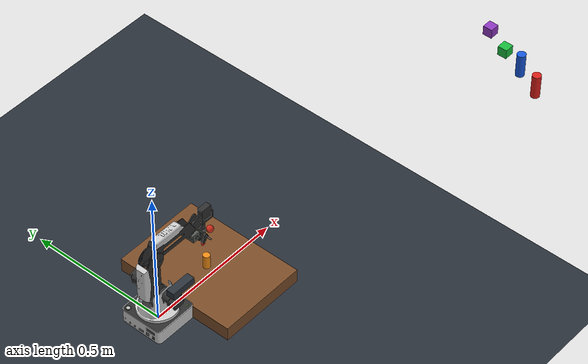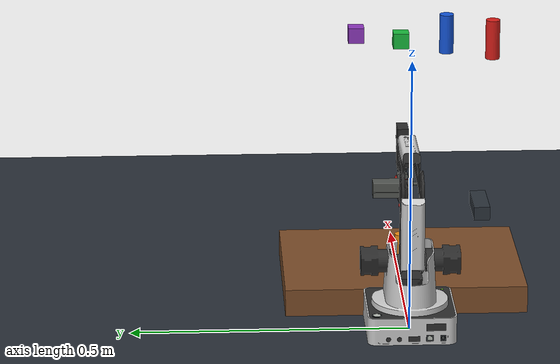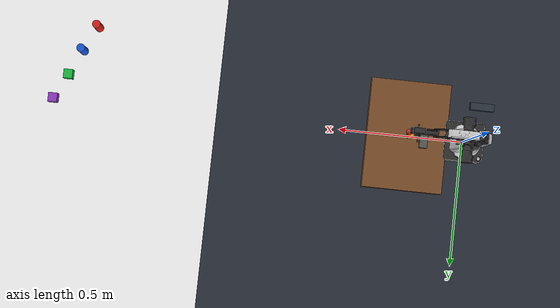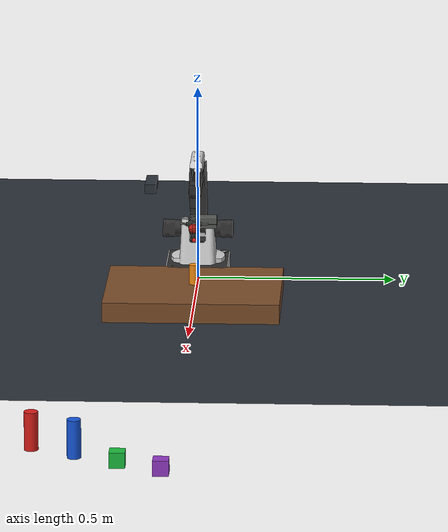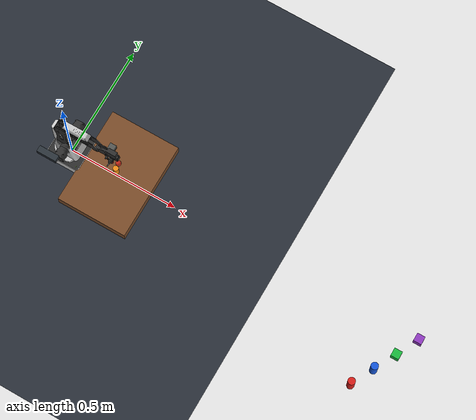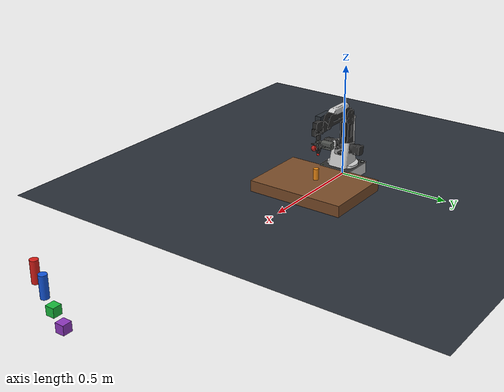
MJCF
<mujoco model="dobot_magician_validation">
  <compiler angle="radian" autolimits="true"/>
  <option timestep="0.001" integrator="implicitfast" gravity="0 0 -9.81"
          solver="Newton" iterations="100" tolerance="1e-10">
    <flag contact="enable"/>
  </option>

  <visual>
    <headlight ambient="0.35 0.35 0.35" diffuse="0.75 0.75 0.75" specular="0.25 0.25 0.25"/>
    <rgba haze="0.15 0.18 0.22 1"/>
    <global azimuth="135" elevation="-22" offwidth="1024" offheight="768"/>
  </visual>

  <statistic center="0 0 0.18" extent="0.55"/>

  <default>
    <joint limited="true" damping="0.08" armature="0.002" frictionloss="0.01"/>
    <geom friction="0.8 0.02 0.002" solref="0.008 1" solimp="0.9 0.95 0.001"
          contype="1" conaffinity="2"/>
    <position ctrllimited="true" kp="250" kv="14"/>
    <default class="collision">
      <geom group="3" rgba="0 0 0 0"/>
    </default>
    <default class="cad_visual">
      <geom contype="0" conaffinity="0" group="2" mass="0.000001"/>
    </default>
  </default>

  <asset>
    <texture name="floor_tex" type="2d" builtin="checker" rgb1="0.20 0.23 0.27"
             rgb2="0.12 0.14 0.17" width="512" height="512"/>
    <material name="floor_mat" texture="floor_tex" texrepeat="3 3" texuniform="true"
              reflectance="0.12"/>
    <material name="base_mat" rgba="0.12 0.16 0.20 1"/>
    <material name="arm_mat" rgba="0.92 0.94 0.96 1"/>
    <material name="joint_mat" rgba="0.08 0.58 0.86 1"/>
    <material name="gripper_mat" rgba="0.18 0.21 0.25 1"/>
    <material name="table_mat" rgba="0.48 0.30 0.16 1"/>
    <material name="object_mat" rgba="0.95 0.55 0.08 1"/>
    <material name="can_red_mat" rgba="0.85 0.12 0.10 1"/>
    <material name="can_blue_mat" rgba="0.08 0.34 0.86 1"/>
    <material name="block_green_mat" rgba="0.10 0.73 0.24 1"/>
    <material name="block_purple_mat" rgba="0.56 0.22 0.75 1"/>
    <material name="cad_dark" rgba="0.180392 0.180392 0.180392 1"/>
    <material name="cad_blueblack" rgba="0.180392 0.2 0.211765 1"/>
    <material name="cad_green" rgba="0.541176 0.878431 0.2 1"/>
    <material name="cad_silver" rgba="0.721569 0.741176 0.709804 1"/>
    <material name="cad_light" rgba="0.8 0.8 0.8 1"/>
    <material name="cad_mid" rgba="0.341176 0.34902 0.337255 1"/>
    <material name="cad_gripper" rgba="0.329412 0.341176 0.32549 1"/>

    <mesh name="mesh_base_dark" file="meshes/magicianBase_46_46_46.obj"/>
    <mesh name="mesh_base_blueblack" file="meshes/magicianBase_46_51_54.obj"/>
    <mesh name="mesh_base_green" file="meshes/magicianBase_138_224_51.obj"/>
    <mesh name="mesh_base_silver" file="meshes/magicianBase_184_189_181.obj"/>
    <mesh name="mesh_base_light" file="meshes/magicianBase_204_204_204.obj"/>
    <mesh name="mesh_link1_dark" file="meshes/magicianLink1_46_46_46.obj"/>
    <mesh name="mesh_link1_light" file="meshes/magicianLink1_204_204_204.obj"/>
    <mesh name="mesh_link2_dark" file="meshes/magicianLink2_46_46_46.obj"/>
    <mesh name="mesh_link2_mid" file="meshes/magicianLink2_87_89_86.obj"/>
    <mesh name="mesh_link2_light" file="meshes/magicianLink2_204_204_204.obj"/>
    <mesh name="mesh_link3_dark" file="meshes/magicianLink3_46_46_46.obj"/>
    <mesh name="mesh_link3_mid" file="meshes/magicianLink3_87_89_86.obj"/>
    <mesh name="mesh_link3_light" file="meshes/magicianLink3_204_204_204.obj"/>
    <mesh name="mesh_link4_dark" file="meshes/magicianLink4_46_46_46.obj"/>
    <mesh name="mesh_gripper_core_dark" file="meshes/gripper_core_46_46_46.obj"/>
    <mesh name="mesh_gripper_core_mid" file="meshes/gripper_core_84_87_83.obj"/>
    <mesh name="mesh_jaw_left_dark" file="meshes/jaw_left_46_46_46.obj"/>
    <mesh name="mesh_jaw_left_mid" file="meshes/jaw_left_84_87_83.obj"/>
    <mesh name="mesh_jaw_right_dark" file="meshes/jaw_right_46_46_46.obj"/>
  </asset>

  <worldbody>
    <light name="key" pos="0.2 -0.35 0.8" dir="-0.2 0.3 -1" directional="true"/>
    <light name="fill" pos="-0.4 0.2 0.55" dir="0.5 -0.2 -0.7" directional="true" diffuse="0.35 0.4 0.5"/>
    <geom name="floor" type="plane" size="1 1 0.05" material="floor_mat"
          contype="2" conaffinity="1"/>
    <camera name="overview" mode="targetbody" target="shoulder" pos="0.52 -0.52 0.42"/>
    <!-- Fixed eye-to-hand RGB-D camera looking at the tabletop workspace.
         The side-offset view reduces arm/gripper occlusion during a grasp. -->
    <camera name="d435i_sim" pos="0.55 0 0.50"
            xyaxes="0 1 0
                    -0.817482433 0 0.575953532"
            fovy="43.2"/>

    <!-- A compact tabletop and a free object for deterministic pick tests. -->
    <geom name="pick_table" type="box" pos="0.23 0 0.025" size="0.16 0.22 0.025"
          material="table_mat" contype="2" conaffinity="1" friction="1.0 0.02 0.002"/>
    <body name="pick_object" pos="0.22 0 0.076">
      <freejoint name="pick_object_free"/>
      <geom name="pick_object_geom" type="cylinder" size="0.012 0.025"
            material="object_mat" mass="0.035" friction="1.2 0.03 0.003"
            contype="3" conaffinity="3"/>
      <site name="pick_object_site" type="sphere" size="0.004" rgba="1 1 0.1 1"/>
    </body>

    <!-- Clutter bodies start parked outside the workspace. The clutter-mode
         backend moves them onto the table using collision-free seeded poses. -->
    <body name="can_red" pos="1.50 -0.30 0.096">
      <freejoint name="can_red_free"/>
      <geom name="can_red_geom" type="cylinder" size="0.016 0.045"
            material="can_red_mat" mass="0.035" friction="0.9 0.03 0.003"
            contype="3" conaffinity="3"/>
    </body>
    <body name="can_blue" pos="1.55 -0.20 0.096">
      <freejoint name="can_blue_free"/>
      <geom name="can_blue_geom" type="cylinder" size="0.016 0.045"
            material="can_blue_mat" mass="0.035" friction="0.9 0.03 0.003"
            contype="3" conaffinity="3"/>
    </body>
    <body name="block_green" pos="1.60 -0.10 0.068">
      <freejoint name="block_green_free"/>
      <geom name="block_green_geom" type="box" size="0.018 0.018 0.018"
            material="block_green_mat" mass="0.025" friction="1.0 0.03 0.003"
            contype="3" conaffinity="3"/>
    </body>
    <body name="block_purple" pos="1.65 0.00 0.068">
      <freejoint name="block_purple_free"/>
      <geom name="block_purple_geom" type="box" size="0.018 0.018 0.018"
            material="block_purple_mat" mass="0.025" friction="1.0 0.03 0.003"
            contype="3" conaffinity="3"/>
    </body>

    <body name="target_marker" mocap="true" pos="0.24 0 0.20">
      <geom name="target_geom" type="sphere" size="0.012" rgba="0.95 0.16 0.12 0.75"
            contype="0" conaffinity="0" mass="0.001"/>
    </body>

    <body name="base" pos="0 0 0">
      <geom name="base_foot" class="collision" type="cylinder" pos="0 0 0.040" size="0.072 0.040"
            material="base_mat" mass="1.20"/>
      <geom name="base_neck" class="collision" type="cylinder" pos="0 0 0.105" size="0.045 0.030"
            material="joint_mat" mass="0.30"/>
      <geom name="visual_base_dark" class="cad_visual" type="mesh" mesh="mesh_base_dark"
            pos="0 0 0.131305" material="cad_dark"/>
      <geom name="visual_base_blueblack" class="cad_visual" type="mesh" mesh="mesh_base_blueblack"
            pos="0 0 0.131305" material="cad_blueblack"/>
      <geom name="visual_base_green" class="cad_visual" type="mesh" mesh="mesh_base_green"
            pos="0 0 0.131305" material="cad_green"/>
      <geom name="visual_base_silver" class="cad_visual" type="mesh" mesh="mesh_base_silver"
            pos="0 0 0.131305" material="cad_silver"/>
      <geom name="visual_base_light" class="cad_visual" type="mesh" mesh="mesh_base_light"
            pos="0 0 0.131305" material="cad_light"/>

      <!-- Base-mounted D435i stand-in, aimed at the tabletop center. Its
           extrinsic is fixed in the robot base frame, not the world frame. -->
      <body name="d435i_mount" pos="0.02 -0.10 0.28">
        <geom name="d435i_mount_visual" type="box" pos="-0.04 -0.02 -0.04"
              size="0.045 0.014 0.012"
              rgba="0.17 0.20 0.23 1" contype="0" conaffinity="0" mass="0.01"/>
        <camera name="d435i_base" pos="0 -0.01 0.02"
                xyaxes="0.464006995 -0.885831535 0
                        0.642785078 0.336696946 0.688086121"
                fovy="43.2"/>
      </body>

      <!-- The shoulder origin matches magician_joint_base: z = 0.131305 m. -->
      <body name="shoulder" pos="0 0 0.131305">
        <joint name="joint_1" type="hinge" axis="0 0 1" range="-2.181661565 2.181661565"/>
        <geom name="shoulder_housing" class="collision" type="cylinder" size="0.039 0.034"
              material="joint_mat" mass="0.36"/>
        <geom name="visual_link1_dark" class="cad_visual" type="mesh" mesh="mesh_link1_dark"
              material="cad_dark"/>
        <geom name="visual_link1_light" class="cad_visual" type="mesh" mesh="mesh_link1_light"
              material="cad_light"/>
        <site name="base_pivot_site" type="sphere" size="0.004" rgba="1 0.8 0.1 1"/>

        <body name="rear_arm" pos="0 0 0">
          <joint name="joint_2" type="hinge" axis="0 1 0" range="-0.087266463 1.570796327"/>
          <geom name="rear_arm_link" class="collision" type="capsule" fromto="0 0 0 0 0 0.135" size="0.020"
                material="arm_mat" mass="0.24"/>
          <geom name="visual_link2_dark" class="cad_visual" type="mesh" mesh="mesh_link2_dark"
                euler="0 -0.349065850399 0" material="cad_dark"/>
          <geom name="visual_link2_mid" class="cad_visual" type="mesh" mesh="mesh_link2_mid"
                euler="0 -0.349065850399 0" material="cad_mid"/>
          <geom name="visual_link2_light" class="cad_visual" type="mesh" mesh="mesh_link2_light"
                euler="0 -0.349065850399 0" material="cad_light"/>

          <body name="elbow" pos="0 0 0.135">
            <!-- This is theta3 - theta2, not the raw firmware theta3. -->
            <joint name="joint_3_relative" type="hinge" axis="0 1 0"
                   range="-1.832595715 1.308996939"/>
            <geom name="elbow_housing" class="collision" type="sphere" size="0.027" material="joint_mat" mass="0.09"/>
            <geom name="forearm_link" class="collision" type="capsule" fromto="0 0 0 0.147 0 0" size="0.018"
                  material="arm_mat" mass="0.20"/>
            <geom name="visual_link3_dark" class="cad_visual" type="mesh" mesh="mesh_link3_dark"
                  pos="0.01645236136 0 -0.133993730472" euler="0 -0.471238898038 0"
                  material="cad_dark"/>
            <geom name="visual_link3_mid" class="cad_visual" type="mesh" mesh="mesh_link3_mid"
                  pos="0.01645236136 0 -0.133993730472" euler="0 -0.471238898038 0"
                  material="cad_mid"/>
            <geom name="visual_link3_light" class="cad_visual" type="mesh" mesh="mesh_link3_light"
                  pos="0.01645236136 0 -0.133993730472" euler="0 -0.471238898038 0"
                  material="cad_light"/>
            <site name="wrist_site" pos="0.147 0 0" type="sphere" size="0.005"
                  rgba="0.1 0.95 0.3 1"/>

            <body name="wrist_pitch_comp_1" pos="0.147 0 0">
              <joint name="joint_mimic_1" type="hinge" axis="0 1 0"
                     range="-1.570796327 0.087266463"/>
              <geom name="mimic_1_inertia" type="sphere" size="0.003" mass="0.001"
                    rgba="0 0 0 0" contype="0" conaffinity="0"/>
              <body name="wrist_pitch_comp_2">
                <joint name="joint_mimic_2" type="hinge" axis="0 1 0"
                       range="-1.308996939 1.832595715"/>
                <geom name="wrist_link" class="collision" type="capsule" fromto="0 0 0 0.060 0 0" size="0.016"
                      material="arm_mat" mass="0.08"/>
                <geom name="visual_link4_dark" class="cad_visual" type="mesh" mesh="mesh_link4_dark"
                      pos="-0.177150678405 0 -0.058595107268" material="cad_dark"/>

                <body name="flange" pos="0.060 0 0">
                  <joint name="joint_4" type="hinge" axis="0 0 1"
                         range="-2.617993878 2.617993878"/>
                  <geom name="flange_housing" class="collision" type="cylinder" pos="0 0 -0.014" size="0.030 0.018"
                        material="joint_mat" mass="0.10"/>
                  <site name="flange_site" type="sphere" size="0.004" rgba="0.9 0.6 0.1 1"/>
                  <geom name="gripper_core" class="collision" type="box" pos="0 0 -0.038" size="0.027 0.021 0.022"
                        material="gripper_mat" mass="0.12"/>
                  <geom name="visual_gripper_core_dark" class="cad_visual" type="mesh"
                        mesh="mesh_gripper_core_dark" pos="-0.000080678405 0 -0.027843407268"
                        material="cad_dark"/>
                  <geom name="visual_gripper_core_mid" class="cad_visual" type="mesh"
                        mesh="mesh_gripper_core_mid" pos="-0.000080678405 0 -0.027843407268"
                        material="cad_gripper"/>
                  <site name="tcp_site" pos="0 0 -0.104843272462" type="sphere" size="0.006"
                        rgba="0.95 0.15 0.12 1"/>

                  <body name="left_jaw">
                    <joint name="gripper_left" type="slide" axis="0 1 0" range="0 0.0135"/>
                    <geom name="left_jaw_geom" class="collision" type="box"
                          pos="0 0.0135 -0.077" size="0.010 0.007 0.027"
                          material="arm_mat" mass="0.025"/>
                    <geom name="visual_jaw_left_dark" class="cad_visual" type="mesh"
                          mesh="mesh_jaw_left_dark" pos="-0.000080678405 -0.0009 -0.027843407268"
                          material="cad_dark"/>
                    <geom name="visual_jaw_left_mid" class="cad_visual" type="mesh"
                          mesh="mesh_jaw_left_mid" pos="-0.000080678405 -0.0009 -0.027843407268"
                          material="cad_gripper"/>
                  </body>
                  <body name="right_jaw">
                    <joint name="gripper_right" type="slide" axis="0 1 0" range="-0.0135 0"/>
                    <geom name="right_jaw_geom" class="collision" type="box"
                          pos="0 -0.0135 -0.077" size="0.010 0.007 0.027"
                          material="arm_mat" mass="0.025"/>
                    <geom name="visual_jaw_right_dark" class="cad_visual" type="mesh"
                          mesh="mesh_jaw_right_dark" pos="-0.000080678405 0.0009 -0.027843407268"
                          material="cad_dark"/>
                  </body>
                </body>
              </body>
            </body>
          </body>
        </body>
      </body>
    </body>
  </worldbody>

  <equality>
    <!-- joint1 = poly(joint2): exact parallelogram compensation. -->
    <joint name="eq_mimic_1" joint1="joint_mimic_1" joint2="joint_2"
           polycoef="0 -1 0 0 0" solref="0.001 1"/>
    <joint name="eq_mimic_2" joint1="joint_mimic_2" joint2="joint_3_relative"
           polycoef="0 -1 0 0 0" solref="0.001 1"/>
    <joint name="eq_gripper" joint1="gripper_right" joint2="gripper_left"
           polycoef="0 -1 0 0 0" solref="0.001 1"/>
  </equality>

  <actuator>
    <position name="act_joint_1" joint="joint_1" ctrlrange="-2.181661565 2.181661565"/>
    <position name="act_joint_2" joint="joint_2" ctrlrange="-0.087266463 1.570796327"/>
    <position name="act_joint_3_relative" joint="joint_3_relative"
              ctrlrange="-1.832595715 1.308996939"/>
    <position name="act_joint_4" joint="joint_4" ctrlrange="-2.617993878 2.617993878"/>
    <position name="act_gripper" joint="gripper_left" ctrlrange="0 0.0135" kp="300" kv="12"/>
  </actuator>
</mujoco>
